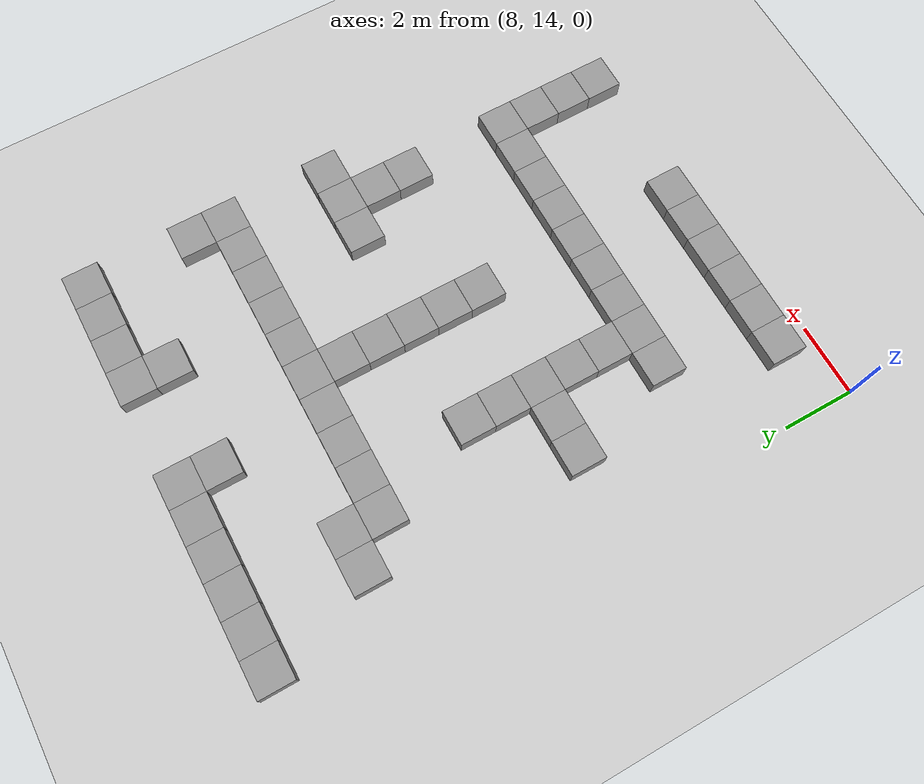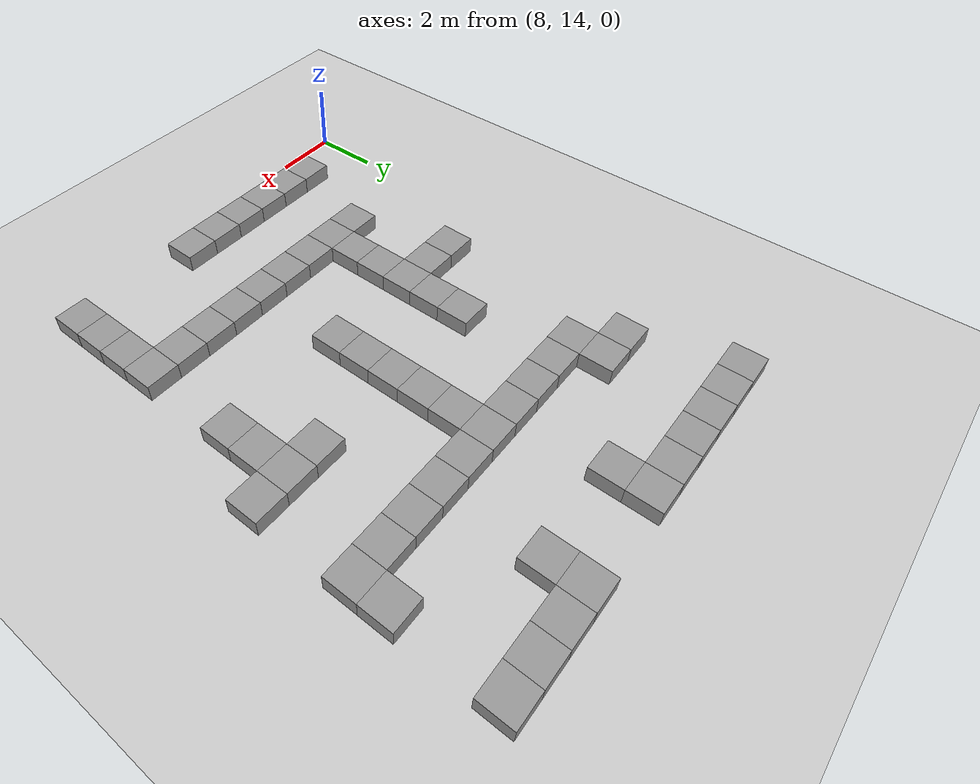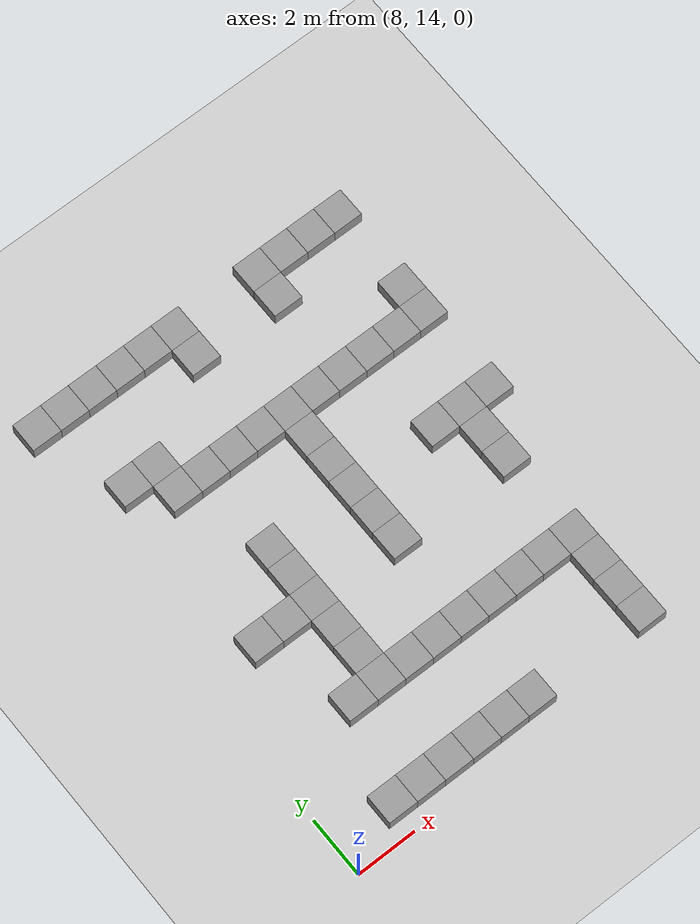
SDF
<sdf version="1.4">
 <world name="default">
  <model name="ground_plane">
   <static>1</static>
   <link name="link">
    <collision name="collision">
     <geometry><plane><normal>0 0 1</normal><size>100 100</size></plane></geometry>
     <surface><friction><ode><mu>100</mu><mu2>50</mu2></ode></friction></surface>
    </collision>
    <visual name="visual">
     <cast_shadows>0</cast_shadows>
     <geometry><plane><normal>0 0 1</normal><size>100 100</size></plane></geometry>
     <material>
      <script><uri>file://media/materials/scripts/gazebo.material</uri><name>Gazebo/Grey</name></script>
     </material>
    </visual>
    <velocity_decay><linear>0</linear><angular>0</angular></velocity_decay>
   </link>
  </model>
  <model name="unit_box_68">
   <pose>9 30 0 0 -0 0</pose>
   <link name="link">
    <inertial>
     <mass>1</mass>
     <inertia><ixx>1</ixx><ixy>0</ixy><ixz>0</ixz><iyy>1</iyy><iyz>0</iyz><izz>1</izz></inertia>
    </inertial>
    <collision name="collision"><geometry><box><size>1 1 1</size></box></geometry></collision>
    <visual name="visual">
     <geometry><box><size>1 1 1</size></box></geometry>
     <material>
      <script><uri>file://media/materials/scripts/gazebo.material</uri><name>Gazebo/Grey</name></script>
     </material>
    </visual>
    <velocity_decay><linear>0</linear><angular>0</angular></velocity_decay>
   </link>
   <static>1</static>
  </model>
  <model name="unit_box_69">
   <pose>10 30 0 0 -0 0</pose>
   <link name="link">
    <inertial>
     <mass>1</mass>
     <inertia><ixx>1</ixx><ixy>0</ixy><ixz>0</ixz><iyy>1</iyy><iyz>0</iyz><izz>1</izz></inertia>
    </inertial>
    <collision name="collision"><geometry><box><size>1 1 1</size></box></geometry></collision>
    <visual name="visual">
     <geometry><box><size>1 1 1</size></box></geometry>
     <material>
      <script><uri>file://media/materials/scripts/gazebo.material</uri><name>Gazebo/Grey</name></script>
     </material>
    </visual>
    <velocity_decay><linear>0</linear><angular>0</angular></velocity_decay>
   </link>
   <static>1</static>
  </model>
  <model name="unit_box_70">
   <pose>11 30 0 0 -0 0</pose>
   <link name="link">
    <inertial>
     <mass>1</mass>
     <inertia><ixx>1</ixx><ixy>0</ixy><ixz>0</ixz><iyy>1</iyy><iyz>0</iyz><izz>1</izz></inertia>
    </inertial>
    <collision name="collision"><geometry><box><size>1 1 1</size></box></geometry></collision>
    <visual name="visual">
     <geometry><box><size>1 1 1</size></box></geometry>
     <material>
      <script><uri>file://media/materials/scripts/gazebo.material</uri><name>Gazebo/Grey</name></script>
     </material>
    </visual>
    <velocity_decay><linear>0</linear><angular>0</angular></velocity_decay>
   </link>
   <static>1</static>
  </model>
  <model name="unit_box_71">
   <pose>12 30 0 0 -0 0</pose>
   <link name="link">
    <inertial>
     <mass>1</mass>
     <inertia><ixx>1</ixx><ixy>0</ixy><ixz>0</ixz><iyy>1</iyy><iyz>0</iyz><izz>1</izz></inertia>
    </inertial>
    <collision name="collision"><geometry><box><size>1 1 1</size></box></geometry></collision>
    <visual name="visual">
     <geometry><box><size>1 1 1</size></box></geometry>
     <material>
      <script><uri>file://media/materials/scripts/gazebo.material</uri><name>Gazebo/Grey</name></script>
     </material>
    </visual>
    <velocity_decay><linear>0</linear><angular>0</angular></velocity_decay>
   </link>
   <static>1</static>
  </model>
  <model name="unit_box_72">
   <pose>13 30 0 0 -0 0</pose>
   <link name="link">
    <inertial>
     <mass>1</mass>
     <inertia><ixx>1</ixx><ixy>0</ixy><ixz>0</ixz><iyy>1</iyy><iyz>0</iyz><izz>1</izz></inertia>
    </inertial>
    <collision name="collision"><geometry><box><size>1 1 1</size></box></geometry></collision>
    <visual name="visual">
     <geometry><box><size>1 1 1</size></box></geometry>
     <material>
      <script><uri>file://media/materials/scripts/gazebo.material</uri><name>Gazebo/Grey</name></script>
     </material>
    </visual>
    <velocity_decay><linear>0</linear><angular>0</angular></velocity_decay>
   </link>
   <static>1</static>
  </model>
  <model name="unit_box_73">
   <pose>14 30 0 0 -0 0</pose>
   <link name="link">
    <inertial>
     <mass>1</mass>
     <inertia><ixx>1</ixx><ixy>0</ixy><ixz>0</ixz><iyy>1</iyy><iyz>0</iyz><izz>1</izz></inertia>
    </inertial>
    <collision name="collision"><geometry><box><size>1 1 1</size></box></geometry></collision>
    <visual name="visual">
     <geometry><box><size>1 1 1</size></box></geometry>
     <material>
      <script><uri>file://media/materials/scripts/gazebo.material</uri><name>Gazebo/Grey</name></script>
     </material>
    </visual>
    <velocity_decay><linear>0</linear><angular>0</angular></velocity_decay>
   </link>
   <static>1</static>
  </model>
  <model name="unit_box_74">
   <pose>17 30 0 0 -0 0</pose>
   <link name="link">
    <inertial>
     <mass>1</mass>
     <inertia><ixx>1</ixx><ixy>0</ixy><ixz>0</ixz><iyy>1</iyy><iyz>0</iyz><izz>1</izz></inertia>
    </inertial>
    <collision name="collision"><geometry><box><size>1 1 1</size></box></geometry></collision>
    <visual name="visual">
     <geometry><box><size>1 1 1</size></box></geometry>
     <material>
      <script><uri>file://media/materials/scripts/gazebo.material</uri><name>Gazebo/Grey</name></script>
     </material>
    </visual>
    <velocity_decay><linear>0</linear><angular>0</angular></velocity_decay>
   </link>
   <static>1</static>
  </model>
  <model name="unit_box_75">
   <pose>18 30 0 0 -0 0</pose>
   <link name="link">
    <inertial>
     <mass>1</mass>
     <inertia><ixx>1</ixx><ixy>0</ixy><ixz>0</ixz><iyy>1</iyy><iyz>0</iyz><izz>1</izz></inertia>
    </inertial>
    <collision name="collision"><geometry><box><size>1 1 1</size></box></geometry></collision>
    <visual name="visual">
     <geometry><box><size>1 1 1</size></box></geometry>
     <material>
      <script><uri>file://media/materials/scripts/gazebo.material</uri><name>Gazebo/Grey</name></script>
     </material>
    </visual>
    <velocity_decay><linear>0</linear><angular>0</angular></velocity_decay>
   </link>
   <static>1</static>
  </model>
  <model name="unit_box_76">
   <pose>19 30 0 0 -0 0</pose>
   <link name="link">
    <inertial>
     <mass>1</mass>
     <inertia><ixx>1</ixx><ixy>0</ixy><ixz>0</ixz><iyy>1</iyy><iyz>0</iyz><izz>1</izz></inertia>
    </inertial>
    <collision name="collision"><geometry><box><size>1 1 1</size></box></geometry></collision>
    <visual name="visual">
     <geometry><box><size>1 1 1</size></box></geometry>
     <material>
      <script><uri>file://media/materials/scripts/gazebo.material</uri><name>Gazebo/Grey</name></script>
     </material>
    </visual>
    <velocity_decay><linear>0</linear><angular>0</angular></velocity_decay>
   </link>
   <static>1</static>
  </model>
  <model name="unit_box_77">
   <pose>20 30 0 0 -0 0</pose>
   <link name="link">
    <inertial>
     <mass>1</mass>
     <inertia><ixx>1</ixx><ixy>0</ixy><ixz>0</ixz><iyy>1</iyy><iyz>0</iyz><izz>1</izz></inertia>
    </inertial>
    <collision name="collision"><geometry><box><size>1 1 1</size></box></geometry></collision>
    <visual name="visual">
     <geometry><box><size>1 1 1</size></box></geometry>
     <material>
      <script><uri>file://media/materials/scripts/gazebo.material</uri><name>Gazebo/Grey</name></script>
     </material>
    </visual>
    <velocity_decay><linear>0</linear><angular>0</angular></velocity_decay>
   </link>
   <static>1</static>
  </model>
  <model name="unit_box_226">
   <pose>14 29 0 0 -0 0</pose>
   <link name="link">
    <inertial>
     <mass>1</mass>
     <inertia><ixx>1</ixx><ixy>0</ixy><ixz>0</ixz><iyy>1</iyy><iyz>0</iyz><izz>1</izz></inertia>
    </inertial>
    <collision name="collision"><geometry><box><size>1 1 1</size></box></geometry></collision>
    <visual name="visual">
     <geometry><box><size>1 1 1</size></box></geometry>
     <material>
      <script><uri>file://media/materials/scripts/gazebo.material</uri><name>Gazebo/Grey</name></script>
     </material>
    </visual>
    <velocity_decay><linear>0</linear><angular>0</angular></velocity_decay>
   </link>
   <static>1</static>
  </model>
  <model name="unit_box_227">
   <pose>17 29 0 0 -0 0</pose>
   <link name="link">
    <inertial>
     <mass>1</mass>
     <inertia><ixx>1</ixx><ixy>0</ixy><ixz>0</ixz><iyy>1</iyy><iyz>0</iyz><izz>1</izz></inertia>
    </inertial>
    <collision name="collision"><geometry><box><size>1 1 1</size></box></geometry></collision>
    <visual name="visual">
     <geometry><box><size>1 1 1</size></box></geometry>
     <material>
      <script><uri>file://media/materials/scripts/gazebo.material</uri><name>Gazebo/Grey</name></script>
     </material>
    </visual>
    <velocity_decay><linear>0</linear><angular>0</angular></velocity_decay>
   </link>
   <static>1</static>
  </model>
  <model name="unit_box_228">
   <pose>14 26 0 0 -0 0</pose>
   <link name="link">
    <inertial>
     <mass>1</mass>
     <inertia><ixx>1</ixx><ixy>0</ixy><ixz>0</ixz><iyy>1</iyy><iyz>0</iyz><izz>1</izz></inertia>
    </inertial>
    <collision name="collision"><geometry><box><size>1 1 1</size></box></geometry></collision>
    <visual name="visual">
     <geometry><box><size>1 1 1</size></box></geometry>
     <material>
      <script><uri>file://media/materials/scripts/gazebo.material</uri><name>Gazebo/Grey</name></script>
     </material>
    </visual>
    <velocity_decay><linear>0</linear><angular>0</angular></velocity_decay>
   </link>
   <static>1</static>
  </model>
  <model name="unit_box_229">
   <pose>15 26 0 0 -0 0</pose>
   <link name="link">
    <inertial>
     <mass>1</mass>
     <inertia><ixx>1</ixx><ixy>0</ixy><ixz>0</ixz><iyy>1</iyy><iyz>0</iyz><izz>1</izz></inertia>
    </inertial>
    <collision name="collision"><geometry><box><size>1 1 1</size></box></geometry></collision>
    <visual name="visual">
     <geometry><box><size>1 1 1</size></box></geometry>
     <material>
      <script><uri>file://media/materials/scripts/gazebo.material</uri><name>Gazebo/Grey</name></script>
     </material>
    </visual>
    <velocity_decay><linear>0</linear><angular>0</angular></velocity_decay>
   </link>
   <static>1</static>
  </model>
  <model name="unit_box_230">
   <pose>16 26 0 0 -0 0</pose>
   <link name="link">
    <inertial>
     <mass>1</mass>
     <inertia><ixx>1</ixx><ixy>0</ixy><ixz>0</ixz><iyy>1</iyy><iyz>0</iyz><izz>1</izz></inertia>
    </inertial>
    <collision name="collision"><geometry><box><size>1 1 1</size></box></geometry></collision>
    <visual name="visual">
     <geometry><box><size>1 1 1</size></box></geometry>
     <material>
      <script><uri>file://media/materials/scripts/gazebo.material</uri><name>Gazebo/Grey</name></script>
     </material>
    </visual>
    <velocity_decay><linear>0</linear><angular>0</angular></velocity_decay>
   </link>
   <static>1</static>
  </model>
  <model name="unit_box_231">
   <pose>17 26 0 0 -0 0</pose>
   <link name="link">
    <inertial>
     <mass>1</mass>
     <inertia><ixx>1</ixx><ixy>0</ixy><ixz>0</ixz><iyy>1</iyy><iyz>0</iyz><izz>1</izz></inertia>
    </inertial>
    <collision name="collision"><geometry><box><size>1 1 1</size></box></geometry></collision>
    <visual name="visual">
     <geometry><box><size>1 1 1</size></box></geometry>
     <material>
      <script><uri>file://media/materials/scripts/gazebo.material</uri><name>Gazebo/Grey</name></script>
     </material>
    </visual>
    <velocity_decay><linear>0</linear><angular>0</angular></velocity_decay>
   </link>
   <static>1</static>
  </model>
  <model name="unit_box_232">
   <pose>18 26 0 0 -0 0</pose>
   <link name="link">
    <inertial>
     <mass>1</mass>
     <inertia><ixx>1</ixx><ixy>0</ixy><ixz>0</ixz><iyy>1</iyy><iyz>0</iyz><izz>1</izz></inertia>
    </inertial>
    <collision name="collision"><geometry><box><size>1 1 1</size></box></geometry></collision>
    <visual name="visual">
     <geometry><box><size>1 1 1</size></box></geometry>
     <material>
      <script><uri>file://media/materials/scripts/gazebo.material</uri><name>Gazebo/Grey</name></script>
     </material>
    </visual>
    <velocity_decay><linear>0</linear><angular>0</angular></velocity_decay>
   </link>
   <static>1</static>
  </model>
  <model name="unit_box_233">
   <pose>19 26 0 0 -0 0</pose>
   <link name="link">
    <inertial>
     <mass>1</mass>
     <inertia><ixx>1</ixx><ixy>0</ixy><ixz>0</ixz><iyy>1</iyy><iyz>0</iyz><izz>1</izz></inertia>
    </inertial>
    <collision name="collision"><geometry><box><size>1 1 1</size></box></geometry></collision>
    <visual name="visual">
     <geometry><box><size>1 1 1</size></box></geometry>
     <material>
      <script><uri>file://media/materials/scripts/gazebo.material</uri><name>Gazebo/Grey</name></script>
     </material>
    </visual>
    <velocity_decay><linear>0</linear><angular>0</angular></velocity_decay>
   </link>
   <static>1</static>
  </model>
  <model name="unit_box_234">
   <pose>20 26 0 0 -0 0</pose>
   <link name="link">
    <inertial>
     <mass>1</mass>
     <inertia><ixx>1</ixx><ixy>0</ixy><ixz>0</ixz><iyy>1</iyy><iyz>0</iyz><izz>1</izz></inertia>
    </inertial>
    <collision name="collision"><geometry><box><size>1 1 1</size></box></geometry></collision>
    <visual name="visual">
     <geometry><box><size>1 1 1</size></box></geometry>
     <material>
      <script><uri>file://media/materials/scripts/gazebo.material</uri><name>Gazebo/Grey</name></script>
     </material>
    </visual>
    <velocity_decay><linear>0</linear><angular>0</angular></velocity_decay>
   </link>
   <static>1</static>
  </model>
  <model name="unit_box_235">
   <pose>20 27 0 0 -0 0</pose>
   <link name="link">
    <inertial>
     <mass>1</mass>
     <inertia><ixx>1</ixx><ixy>0</ixy><ixz>0</ixz><iyy>1</iyy><iyz>0</iyz><izz>1</izz></inertia>
    </inertial>
    <collision name="collision"><geometry><box><size>1 1 1</size></box></geometry></collision>
    <visual name="visual">
     <geometry><box><size>1 1 1</size></box></geometry>
     <material>
      <script><uri>file://media/materials/scripts/gazebo.material</uri><name>Gazebo/Grey</name></script>
     </material>
    </visual>
    <velocity_decay><linear>0</linear><angular>0</angular></velocity_decay>
   </link>
   <static>1</static>
  </model>
  <model name="unit_box_236">
   <pose>13 26 0 0 -0 0</pose>
   <link name="link">
    <inertial>
     <mass>1</mass>
     <inertia><ixx>1</ixx><ixy>0</ixy><ixz>0</ixz><iyy>1</iyy><iyz>0</iyz><izz>1</izz></inertia>
    </inertial>
    <collision name="collision"><geometry><box><size>1 1 1</size></box></geometry></collision>
    <visual name="visual">
     <geometry><box><size>1 1 1</size></box></geometry>
     <material>
      <script><uri>file://media/materials/scripts/gazebo.material</uri><name>Gazebo/Grey</name></script>
     </material>
    </visual>
    <velocity_decay><linear>0</linear><angular>0</angular></velocity_decay>
   </link>
   <static>1</static>
  </model>
  <model name="unit_box_237">
   <pose>12 26 0 0 -0 0</pose>
   <link name="link">
    <inertial>
     <mass>1</mass>
     <inertia><ixx>1</ixx><ixy>0</ixy><ixz>0</ixz><iyy>1</iyy><iyz>0</iyz><izz>1</izz></inertia>
    </inertial>
    <collision name="collision"><geometry><box><size>1 1 1</size></box></geometry></collision>
    <visual name="visual">
     <geometry><box><size>1 1 1</size></box></geometry>
     <material>
      <script><uri>file://media/materials/scripts/gazebo.material</uri><name>Gazebo/Grey</name></script>
     </material>
    </visual>
    <velocity_decay><linear>0</linear><angular>0</angular></velocity_decay>
   </link>
   <static>1</static>
  </model>
  <model name="unit_box_238">
   <pose>11 26 0 0 -0 0</pose>
   <link name="link">
    <inertial>
     <mass>1</mass>
     <inertia><ixx>1</ixx><ixy>0</ixy><ixz>0</ixz><iyy>1</iyy><iyz>0</iyz><izz>1</izz></inertia>
    </inertial>
    <collision name="collision"><geometry><box><size>1 1 1</size></box></geometry></collision>
    <visual name="visual">
     <geometry><box><size>1 1 1</size></box></geometry>
     <material>
      <script><uri>file://media/materials/scripts/gazebo.material</uri><name>Gazebo/Grey</name></script>
     </material>
    </visual>
    <velocity_decay><linear>0</linear><angular>0</angular></velocity_decay>
   </link>
   <static>1</static>
  </model>
  <model name="unit_box_239">
   <pose>11 27 0 0 -0 0</pose>
   <link name="link">
    <inertial>
     <mass>1</mass>
     <inertia><ixx>1</ixx><ixy>0</ixy><ixz>0</ixz><iyy>1</iyy><iyz>0</iyz><izz>1</izz></inertia>
    </inertial>
    <collision name="collision"><geometry><box><size>1 1 1</size></box></geometry></collision>
    <visual name="visual">
     <geometry><box><size>1 1 1</size></box></geometry>
     <material>
      <script><uri>file://media/materials/scripts/gazebo.material</uri><name>Gazebo/Grey</name></script>
     </material>
    </visual>
    <velocity_decay><linear>0</linear><angular>0</angular></velocity_decay>
   </link>
   <static>1</static>
  </model>
  <model name="unit_box_249">
   <pose>10 15 0 0 -0 0</pose>
   <link name="link">
    <inertial>
     <mass>1</mass>
     <inertia><ixx>1</ixx><ixy>0</ixy><ixz>0</ixz><iyy>1</iyy><iyz>0</iyz><izz>1</izz></inertia>
    </inertial>
    <collision name="collision"><geometry><box><size>1 1 1</size></box></geometry></collision>
    <visual name="visual">
     <geometry><box><size>1 1 1</size></box></geometry>
     <material>
      <script><uri>file://media/materials/scripts/gazebo.material</uri><name>Gazebo/Grey</name></script>
     </material>
    </visual>
    <velocity_decay><linear>0</linear><angular>0</angular></velocity_decay>
   </link>
   <static>1</static>
  </model>
  <model name="unit_box_250">
   <pose>11 15 0 0 -0 0</pose>
   <link name="link">
    <inertial>
     <mass>1</mass>
     <inertia><ixx>1</ixx><ixy>0</ixy><ixz>0</ixz><iyy>1</iyy><iyz>0</iyz><izz>1</izz></inertia>
    </inertial>
    <collision name="collision"><geometry><box><size>1 1 1</size></box></geometry></collision>
    <visual name="visual">
     <geometry><box><size>1 1 1</size></box></geometry>
     <material>
      <script><uri>file://media/materials/scripts/gazebo.material</uri><name>Gazebo/Grey</name></script>
     </material>
    </visual>
    <velocity_decay><linear>0</linear><angular>0</angular></velocity_decay>
   </link>
   <static>1</static>
  </model>
  <model name="unit_box_251">
   <pose>12 15 0 0 -0 0</pose>
   <link name="link">
    <inertial>
     <mass>1</mass>
     <inertia><ixx>1</ixx><ixy>0</ixy><ixz>0</ixz><iyy>1</iyy><iyz>0</iyz><izz>1</izz></inertia>
    </inertial>
    <collision name="collision"><geometry><box><size>1 1 1</size></box></geometry></collision>
    <visual name="visual">
     <geometry><box><size>1 1 1</size></box></geometry>
     <material>
      <script><uri>file://media/materials/scripts/gazebo.material</uri><name>Gazebo/Grey</name></script>
     </material>
    </visual>
    <velocity_decay><linear>0</linear><angular>0</angular></velocity_decay>
   </link>
   <static>1</static>
  </model>
  <model name="unit_box_252">
   <pose>13 15 0 0 -0 0</pose>
   <link name="link">
    <inertial>
     <mass>1</mass>
     <inertia><ixx>1</ixx><ixy>0</ixy><ixz>0</ixz><iyy>1</iyy><iyz>0</iyz><izz>1</izz></inertia>
    </inertial>
    <collision name="collision"><geometry><box><size>1 1 1</size></box></geometry></collision>
    <visual name="visual">
     <geometry><box><size>1 1 1</size></box></geometry>
     <material>
      <script><uri>file://media/materials/scripts/gazebo.material</uri><name>Gazebo/Grey</name></script>
     </material>
    </visual>
    <velocity_decay><linear>0</linear><angular>0</angular></velocity_decay>
   </link>
   <static>1</static>
  </model>
  <model name="unit_box_253">
   <pose>14 15 0 0 -0 0</pose>
   <link name="link">
    <inertial>
     <mass>1</mass>
     <inertia><ixx>1</ixx><ixy>0</ixy><ixz>0</ixz><iyy>1</iyy><iyz>0</iyz><izz>1</izz></inertia>
    </inertial>
    <collision name="collision"><geometry><box><size>1 1 1</size></box></geometry></collision>
    <visual name="visual">
     <geometry><box><size>1 1 1</size></box></geometry>
     <material>
      <script><uri>file://media/materials/scripts/gazebo.material</uri><name>Gazebo/Grey</name></script>
     </material>
    </visual>
    <velocity_decay><linear>0</linear><angular>0</angular></velocity_decay>
   </link>
   <static>1</static>
  </model>
  <model name="unit_box_254">
   <pose>15 15 0 0 -0 0</pose>
   <link name="link">
    <inertial>
     <mass>1</mass>
     <inertia><ixx>1</ixx><ixy>0</ixy><ixz>0</ixz><iyy>1</iyy><iyz>0</iyz><izz>1</izz></inertia>
    </inertial>
    <collision name="collision"><geometry><box><size>1 1 1</size></box></geometry></collision>
    <visual name="visual">
     <geometry><box><size>1 1 1</size></box></geometry>
     <material>
      <script><uri>file://media/materials/scripts/gazebo.material</uri><name>Gazebo/Grey</name></script>
     </material>
    </visual>
    <velocity_decay><linear>0</linear><angular>0</angular></velocity_decay>
   </link>
   <static>1</static>
  </model>
  <model name="unit_box_260">
   <pose>19 15 0 0 -0 0</pose>
   <link name="link">
    <inertial>
     <mass>1</mass>
     <inertia><ixx>1</ixx><ixy>0</ixy><ixz>0</ixz><iyy>1</iyy><iyz>0</iyz><izz>1</izz></inertia>
    </inertial>
    <collision name="collision"><geometry><box><size>1 1 1</size></box></geometry></collision>
    <visual name="visual">
     <geometry><box><size>1 1 1</size></box></geometry>
     <material>
      <script><uri>file://media/materials/scripts/gazebo.material</uri><name>Gazebo/Grey</name></script>
     </material>
    </visual>
    <velocity_decay><linear>0</linear><angular>0</angular></velocity_decay>
   </link>
   <static>1</static>
  </model>
  <model name="unit_box_261">
   <pose>19 16 0 0 -0 0</pose>
   <link name="link">
    <inertial>
     <mass>1</mass>
     <inertia><ixx>1</ixx><ixy>0</ixy><ixz>0</ixz><iyy>1</iyy><iyz>0</iyz><izz>1</izz></inertia>
    </inertial>
    <collision name="collision"><geometry><box><size>1 1 1</size></box></geometry></collision>
    <visual name="visual">
     <geometry><box><size>1 1 1</size></box></geometry>
     <material>
      <script><uri>file://media/materials/scripts/gazebo.material</uri><name>Gazebo/Grey</name></script>
     </material>
    </visual>
    <velocity_decay><linear>0</linear><angular>0</angular></velocity_decay>
   </link>
   <static>1</static>
  </model>
  <model name="unit_box_262">
   <pose>19 17 0 0 -0 0</pose>
   <link name="link">
    <inertial>
     <mass>1</mass>
     <inertia><ixx>1</ixx><ixy>0</ixy><ixz>0</ixz><iyy>1</iyy><iyz>0</iyz><izz>1</izz></inertia>
    </inertial>
    <collision name="collision"><geometry><box><size>1 1 1</size></box></geometry></collision>
    <visual name="visual">
     <geometry><box><size>1 1 1</size></box></geometry>
     <material>
      <script><uri>file://media/materials/scripts/gazebo.material</uri><name>Gazebo/Grey</name></script>
     </material>
    </visual>
    <velocity_decay><linear>0</linear><angular>0</angular></velocity_decay>
   </link>
   <static>1</static>
  </model>
  <model name="unit_box_263">
   <pose>19 18 0 0 -0 0</pose>
   <link name="link">
    <inertial>
     <mass>1</mass>
     <inertia><ixx>1</ixx><ixy>0</ixy><ixz>0</ixz><iyy>1</iyy><iyz>0</iyz><izz>1</izz></inertia>
    </inertial>
    <collision name="collision"><geometry><box><size>1 1 1</size></box></geometry></collision>
    <visual name="visual">
     <geometry><box><size>1 1 1</size></box></geometry>
     <material>
      <script><uri>file://media/materials/scripts/gazebo.material</uri><name>Gazebo/Grey</name></script>
     </material>
    </visual>
    <velocity_decay><linear>0</linear><angular>0</angular></velocity_decay>
   </link>
   <static>1</static>
  </model>
  <model name="unit_box_264">
   <pose>18 18 0 0 -0 0</pose>
   <link name="link">
    <inertial>
     <mass>1</mass>
     <inertia><ixx>1</ixx><ixy>0</ixy><ixz>0</ixz><iyy>1</iyy><iyz>0</iyz><izz>1</izz></inertia>
    </inertial>
    <collision name="collision"><geometry><box><size>1 1 1</size></box></geometry></collision>
    <visual name="visual">
     <geometry><box><size>1 1 1</size></box></geometry>
     <material>
      <script><uri>file://media/materials/scripts/gazebo.material</uri><name>Gazebo/Grey</name></script>
     </material>
    </visual>
    <velocity_decay><linear>0</linear><angular>0</angular></velocity_decay>
   </link>
   <static>1</static>
  </model>
  <model name="unit_box_265">
   <pose>17 18 0 0 -0 0</pose>
   <link name="link">
    <inertial>
     <mass>1</mass>
     <inertia><ixx>1</ixx><ixy>0</ixy><ixz>0</ixz><iyy>1</iyy><iyz>0</iyz><izz>1</izz></inertia>
    </inertial>
    <collision name="collision"><geometry><box><size>1 1 1</size></box></geometry></collision>
    <visual name="visual">
     <geometry><box><size>1 1 1</size></box></geometry>
     <material>
      <script><uri>file://media/materials/scripts/gazebo.material</uri><name>Gazebo/Grey</name></script>
     </material>
    </visual>
    <velocity_decay><linear>0</linear><angular>0</angular></velocity_decay>
   </link>
   <static>1</static>
  </model>
  <model name="unit_box_266">
   <pose>16 18 0 0 -0 0</pose>
   <link name="link">
    <inertial>
     <mass>1</mass>
     <inertia><ixx>1</ixx><ixy>0</ixy><ixz>0</ixz><iyy>1</iyy><iyz>0</iyz><izz>1</izz></inertia>
    </inertial>
    <collision name="collision"><geometry><box><size>1 1 1</size></box></geometry></collision>
    <visual name="visual">
     <geometry><box><size>1 1 1</size></box></geometry>
     <material>
      <script><uri>file://media/materials/scripts/gazebo.material</uri><name>Gazebo/Grey</name></script>
     </material>
    </visual>
    <velocity_decay><linear>0</linear><angular>0</angular></velocity_decay>
   </link>
   <static>1</static>
  </model>
  <model name="unit_box_267">
   <pose>15 18 0 0 -0 0</pose>
   <link name="link">
    <inertial>
     <mass>1</mass>
     <inertia><ixx>1</ixx><ixy>0</ixy><ixz>0</ixz><iyy>1</iyy><iyz>0</iyz><izz>1</izz></inertia>
    </inertial>
    <collision name="collision"><geometry><box><size>1 1 1</size></box></geometry></collision>
    <visual name="visual">
     <geometry><box><size>1 1 1</size></box></geometry>
     <material>
      <script><uri>file://media/materials/scripts/gazebo.material</uri><name>Gazebo/Grey</name></script>
     </material>
    </visual>
    <velocity_decay><linear>0</linear><angular>0</angular></velocity_decay>
   </link>
   <static>1</static>
  </model>
  <model name="unit_box_268">
   <pose>14 18 0 0 -0 0</pose>
   <link name="link">
    <inertial>
     <mass>1</mass>
     <inertia><ixx>1</ixx><ixy>0</ixy><ixz>0</ixz><iyy>1</iyy><iyz>0</iyz><izz>1</izz></inertia>
    </inertial>
    <collision name="collision"><geometry><box><size>1 1 1</size></box></geometry></collision>
    <visual name="visual">
     <geometry><box><size>1 1 1</size></box></geometry>
     <material>
      <script><uri>file://media/materials/scripts/gazebo.material</uri><name>Gazebo/Grey</name></script>
     </material>
    </visual>
    <velocity_decay><linear>0</linear><angular>0</angular></velocity_decay>
   </link>
   <static>1</static>
  </model>
  <model name="unit_box_269">
   <pose>13 18 0 0 -0 0</pose>
   <link name="link">
    <inertial>
     <mass>1</mass>
     <inertia><ixx>1</ixx><ixy>0</ixy><ixz>0</ixz><iyy>1</iyy><iyz>0</iyz><izz>1</izz></inertia>
    </inertial>
    <collision name="collision"><geometry><box><size>1 1 1</size></box></geometry></collision>
    <visual name="visual">
     <geometry><box><size>1 1 1</size></box></geometry>
     <material>
      <script><uri>file://media/materials/scripts/gazebo.material</uri><name>Gazebo/Grey</name></script>
     </material>
    </visual>
    <velocity_decay><linear>0</linear><angular>0</angular></velocity_decay>
   </link>
   <static>1</static>
  </model>
  <model name="unit_box_270">
   <pose>12 18 0 0 -0 0</pose>
   <link name="link">
    <inertial>
     <mass>1</mass>
     <inertia><ixx>1</ixx><ixy>0</ixy><ixz>0</ixz><iyy>1</iyy><iyz>0</iyz><izz>1</izz></inertia>
    </inertial>
    <collision name="collision"><geometry><box><size>1 1 1</size></box></geometry></collision>
    <visual name="visual">
     <geometry><box><size>1 1 1</size></box></geometry>
     <material>
      <script><uri>file://media/materials/scripts/gazebo.material</uri><name>Gazebo/Grey</name></script>
     </material>
    </visual>
    <velocity_decay><linear>0</linear><angular>0</angular></velocity_decay>
   </link>
   <static>1</static>
  </model>
  <model name="unit_box_271">
   <pose>11 18 0 0 -0 0</pose>
   <link name="link">
    <inertial>
     <mass>1</mass>
     <inertia><ixx>1</ixx><ixy>0</ixy><ixz>0</ixz><iyy>1</iyy><iyz>0</iyz><izz>1</izz></inertia>
    </inertial>
    <collision name="collision"><geometry><box><size>1 1 1</size></box></geometry></collision>
    <visual name="visual">
     <geometry><box><size>1 1 1</size></box></geometry>
     <material>
      <script><uri>file://media/materials/scripts/gazebo.material</uri><name>Gazebo/Grey</name></script>
     </material>
    </visual>
    <velocity_decay><linear>0</linear><angular>0</angular></velocity_decay>
   </link>
   <static>1</static>
  </model>
  <model name="unit_box_299">
   <pose>10 27 0 0 -0 0</pose>
   <link name="link">
    <inertial>
     <mass>1</mass>
     <inertia><ixx>1</ixx><ixy>0</ixy><ixz>0</ixz><iyy>1</iyy><iyz>0</iyz><izz>1</izz></inertia>
    </inertial>
    <collision name="collision"><geometry><box><size>1 1 1</size></box></geometry></collision>
    <visual name="visual">
     <geometry><box><size>1 1 1</size></box></geometry>
     <material>
      <script><uri>file://media/materials/scripts/gazebo.material</uri><name>Gazebo/Grey</name></script>
     </material>
    </visual>
    <velocity_decay><linear>0</linear><angular>0</angular></velocity_decay>
   </link>
   <static>1</static>
  </model>
  <model name="unit_box_313">
   <pose>20 23 0 0 -0 0</pose>
   <link name="link">
    <inertial>
     <mass>1</mass>
     <inertia><ixx>1</ixx><ixy>0</ixy><ixz>0</ixz><iyy>1</iyy><iyz>0</iyz><izz>1</izz></inertia>
    </inertial>
    <collision name="collision"><geometry><box><size>1 1 1</size></box></geometry></collision>
    <visual name="visual">
     <geometry><box><size>1 1 1</size></box></geometry>
     <material>
      <script><uri>file://media/materials/scripts/gazebo.material</uri><name>Gazebo/Grey</name></script>
     </material>
    </visual>
    <velocity_decay><linear>0</linear><angular>0</angular></velocity_decay>
   </link>
   <static>1</static>
  </model>
  <model name="unit_box_314">
   <pose>19 23 0 0 -0 0</pose>
   <link name="link">
    <inertial>
     <mass>1</mass>
     <inertia><ixx>1</ixx><ixy>0</ixy><ixz>0</ixz><iyy>1</iyy><iyz>0</iyz><izz>1</izz></inertia>
    </inertial>
    <collision name="collision"><geometry><box><size>1 1 1</size></box></geometry></collision>
    <visual name="visual">
     <geometry><box><size>1 1 1</size></box></geometry>
     <material>
      <script><uri>file://media/materials/scripts/gazebo.material</uri><name>Gazebo/Grey</name></script>
     </material>
    </visual>
    <velocity_decay><linear>0</linear><angular>0</angular></velocity_decay>
   </link>
   <static>1</static>
  </model>
  <model name="unit_box_315">
   <pose>18 23 0 0 -0 0</pose>
   <link name="link">
    <inertial>
     <mass>1</mass>
     <inertia><ixx>1</ixx><ixy>0</ixy><ixz>0</ixz><iyy>1</iyy><iyz>0</iyz><izz>1</izz></inertia>
    </inertial>
    <collision name="collision"><geometry><box><size>1 1 1</size></box></geometry></collision>
    <visual name="visual">
     <geometry><box><size>1 1 1</size></box></geometry>
     <material>
      <script><uri>file://media/materials/scripts/gazebo.material</uri><name>Gazebo/Grey</name></script>
     </material>
    </visual>
    <velocity_decay><linear>0</linear><angular>0</angular></velocity_decay>
   </link>
   <static>1</static>
  </model>
  <model name="unit_box_347">
   <pose>15 25 0 0 -0 0</pose>
   <link name="link">
    <inertial>
     <mass>1</mass>
     <inertia><ixx>1</ixx><ixy>0</ixy><ixz>0</ixz><iyy>1</iyy><iyz>0</iyz><izz>1</izz></inertia>
    </inertial>
    <collision name="collision"><geometry><box><size>1 1 1</size></box></geometry></collision>
    <visual name="visual">
     <geometry><box><size>1 1 1</size></box></geometry>
     <material>
      <script><uri>file://media/materials/scripts/gazebo.material</uri><name>Gazebo/Grey</name></script>
     </material>
    </visual>
    <velocity_decay><linear>0</linear><angular>0</angular></velocity_decay>
   </link>
   <static>1</static>
  </model>
  <model name="unit_box_348">
   <pose>15 24 0 0 -0 0</pose>
   <link name="link">
    <inertial>
     <mass>1</mass>
     <inertia><ixx>1</ixx><ixy>0</ixy><ixz>0</ixz><iyy>1</iyy><iyz>0</iyz><izz>1</izz></inertia>
    </inertial>
    <collision name="collision"><geometry><box><size>1 1 1</size></box></geometry></collision>
    <visual name="visual">
     <geometry><box><size>1 1 1</size></box></geometry>
     <material>
      <script><uri>file://media/materials/scripts/gazebo.material</uri><name>Gazebo/Grey</name></script>
     </material>
    </visual>
    <velocity_decay><linear>0</linear><angular>0</angular></velocity_decay>
   </link>
   <static>1</static>
  </model>
  <model name="unit_box_349">
   <pose>15 23 0 0 -0 0</pose>
   <link name="link">
    <inertial>
     <mass>1</mass>
     <inertia><ixx>1</ixx><ixy>0</ixy><ixz>0</ixz><iyy>1</iyy><iyz>0</iyz><izz>1</izz></inertia>
    </inertial>
    <collision name="collision"><geometry><box><size>1 1 1</size></box></geometry></collision>
    <visual name="visual">
     <geometry><box><size>1 1 1</size></box></geometry>
     <material>
      <script><uri>file://media/materials/scripts/gazebo.material</uri><name>Gazebo/Grey</name></script>
     </material>
    </visual>
    <velocity_decay><linear>0</linear><angular>0</angular></velocity_decay>
   </link>
   <static>1</static>
  </model>
  <model name="unit_box_350">
   <pose>15 22 0 0 -0 0</pose>
   <link name="link">
    <inertial>
     <mass>1</mass>
     <inertia><ixx>1</ixx><ixy>0</ixy><ixz>0</ixz><iyy>1</iyy><iyz>0</iyz><izz>1</izz></inertia>
    </inertial>
    <collision name="collision"><geometry><box><size>1 1 1</size></box></geometry></collision>
    <visual name="visual">
     <geometry><box><size>1 1 1</size></box></geometry>
     <material>
      <script><uri>file://media/materials/scripts/gazebo.material</uri><name>Gazebo/Grey</name></script>
     </material>
    </visual>
    <velocity_decay><linear>0</linear><angular>0</angular></velocity_decay>
   </link>
   <static>1</static>
  </model>
  <model name="unit_box_351">
   <pose>15 21 0 0 -0 0</pose>
   <link name="link">
    <inertial>
     <mass>1</mass>
     <inertia><ixx>1</ixx><ixy>0</ixy><ixz>0</ixz><iyy>1</iyy><iyz>0</iyz><izz>1</izz></inertia>
    </inertial>
    <collision name="collision"><geometry><box><size>1 1 1</size></box></geometry></collision>
    <visual name="visual">
     <geometry><box><size>1 1 1</size></box></geometry>
     <material>
      <script><uri>file://media/materials/scripts/gazebo.material</uri><name>Gazebo/Grey</name></script>
     </material>
    </visual>
    <velocity_decay><linear>0</linear><angular>0</angular></velocity_decay>
   </link>
   <static>1</static>
  </model>
  <model name="unit_box_352">
   <pose>19 22 0 0 -0 0</pose>
   <link name="link">
    <inertial>
     <mass>1</mass>
     <inertia><ixx>1</ixx><ixy>0</ixy><ixz>0</ixz><iyy>1</iyy><iyz>0</iyz><izz>1</izz></inertia>
    </inertial>
    <collision name="collision"><geometry><box><size>1 1 1</size></box></geometry></collision>
    <visual name="visual">
     <geometry><box><size>1 1 1</size></box></geometry>
     <material>
      <script><uri>file://media/materials/scripts/gazebo.material</uri><name>Gazebo/Grey</name></script>
     </material>
    </visual>
    <velocity_decay><linear>0</linear><angular>0</angular></velocity_decay>
   </link>
   <static>1</static>
  </model>
  <model name="unit_box_353">
   <pose>19 21 0 0 -0 0</pose>
   <link name="link">
    <inertial>
     <mass>1</mass>
     <inertia><ixx>1</ixx><ixy>0</ixy><ixz>0</ixz><iyy>1</iyy><iyz>0</iyz><izz>1</izz></inertia>
    </inertial>
    <collision name="collision"><geometry><box><size>1 1 1</size></box></geometry></collision>
    <visual name="visual">
     <geometry><box><size>1 1 1</size></box></geometry>
     <material>
      <script><uri>file://media/materials/scripts/gazebo.material</uri><name>Gazebo/Grey</name></script>
     </material>
    </visual>
    <velocity_decay><linear>0</linear><angular>0</angular></velocity_decay>
   </link>
   <static>1</static>
  </model>
  <model name="unit_box_354">
   <pose>12 19 0 0 -0 0</pose>
   <link name="link">
    <inertial>
     <mass>1</mass>
     <inertia><ixx>1</ixx><ixy>0</ixy><ixz>0</ixz><iyy>1</iyy><iyz>0</iyz><izz>1</izz></inertia>
    </inertial>
    <collision name="collision"><geometry><box><size>1 1 1</size></box></geometry></collision>
    <visual name="visual">
     <geometry><box><size>1 1 1</size></box></geometry>
     <material>
      <script><uri>file://media/materials/scripts/gazebo.material</uri><name>Gazebo/Grey</name></script>
     </material>
    </visual>
    <velocity_decay><linear>0</linear><angular>0</angular></velocity_decay>
   </link>
   <static>1</static>
  </model>
  <model name="unit_box_355">
   <pose>12 20 0 0 -0 0</pose>
   <link name="link">
    <inertial>
     <mass>1</mass>
     <inertia><ixx>1</ixx><ixy>0</ixy><ixz>0</ixz><iyy>1</iyy><iyz>0</iyz><izz>1</izz></inertia>
    </inertial>
    <collision name="collision"><geometry><box><size>1 1 1</size></box></geometry></collision>
    <visual name="visual">
     <geometry><box><size>1 1 1</size></box></geometry>
     <material>
      <script><uri>file://media/materials/scripts/gazebo.material</uri><name>Gazebo/Grey</name></script>
     </material>
    </visual>
    <velocity_decay><linear>0</linear><angular>0</angular></velocity_decay>
   </link>
   <static>1</static>
  </model>
  <model name="unit_box_356">
   <pose>12 21 0 0 -0 0</pose>
   <link name="link">
    <inertial>
     <mass>1</mass>
     <inertia><ixx>1</ixx><ixy>0</ixy><ixz>0</ixz><iyy>1</iyy><iyz>0</iyz><izz>1</izz></inertia>
    </inertial>
    <collision name="collision"><geometry><box><size>1 1 1</size></box></geometry></collision>
    <visual name="visual">
     <geometry><box><size>1 1 1</size></box></geometry>
     <material>
      <script><uri>file://media/materials/scripts/gazebo.material</uri><name>Gazebo/Grey</name></script>
     </material>
    </visual>
    <velocity_decay><linear>0</linear><angular>0</angular></velocity_decay>
   </link>
   <static>1</static>
  </model>
  <model name="unit_box_357">
   <pose>12 22 0 0 -0 0</pose>
   <link name="link">
    <inertial>
     <mass>1</mass>
     <inertia><ixx>1</ixx><ixy>0</ixy><ixz>0</ixz><iyy>1</iyy><iyz>0</iyz><izz>1</izz></inertia>
    </inertial>
    <collision name="collision"><geometry><box><size>1 1 1</size></box></geometry></collision>
    <visual name="visual">
     <geometry><box><size>1 1 1</size></box></geometry>
     <material>
      <script><uri>file://media/materials/scripts/gazebo.material</uri><name>Gazebo/Grey</name></script>
     </material>
    </visual>
    <velocity_decay><linear>0</linear><angular>0</angular></velocity_decay>
   </link>
   <static>1</static>
  </model>
  <model name="unit_box_358">
   <pose>12 23 0 0 -0 0</pose>
   <link name="link">
    <inertial>
     <mass>1</mass>
     <inertia><ixx>1</ixx><ixy>0</ixy><ixz>0</ixz><iyy>1</iyy><iyz>0</iyz><izz>1</izz></inertia>
    </inertial>
    <collision name="collision"><geometry><box><size>1 1 1</size></box></geometry></collision>
    <visual name="visual">
     <geometry><box><size>1 1 1</size></box></geometry>
     <material>
      <script><uri>file://media/materials/scripts/gazebo.material</uri><name>Gazebo/Grey</name></script>
     </material>
    </visual>
    <velocity_decay><linear>0</linear><angular>0</angular></velocity_decay>
   </link>
   <static>1</static>
  </model>
  <model name="unit_box_359">
   <pose>11 21 0 0 -0 0</pose>
   <link name="link">
    <inertial>
     <mass>1</mass>
     <inertia><ixx>1</ixx><ixy>0</ixy><ixz>0</ixz><iyy>1</iyy><iyz>0</iyz><izz>1</izz></inertia>
    </inertial>
    <collision name="collision"><geometry><box><size>1 1 1</size></box></geometry></collision>
    <visual name="visual">
     <geometry><box><size>1 1 1</size></box></geometry>
     <material>
      <script><uri>file://media/materials/scripts/gazebo.material</uri><name>Gazebo/Grey</name></script>
     </material>
    </visual>
    <velocity_decay><linear>0</linear><angular>0</angular></velocity_decay>
   </link>
   <static>1</static>
  </model>
  <model name="unit_box_360">
   <pose>10 21 0 0 -0 0</pose>
   <link name="link">
    <inertial>
     <mass>1</mass>
     <inertia><ixx>1</ixx><ixy>0</ixy><ixz>0</ixz><iyy>1</iyy><iyz>0</iyz><izz>1</izz></inertia>
    </inertial>
    <collision name="collision"><geometry><box><size>1 1 1</size></box></geometry></collision>
    <visual name="visual">
     <geometry><box><size>1 1 1</size></box></geometry>
     <material>
      <script><uri>file://media/materials/scripts/gazebo.material</uri><name>Gazebo/Grey</name></script>
     </material>
    </visual>
    <velocity_decay><linear>0</linear><angular>0</angular></velocity_decay>
   </link>
   <static>1</static>
  </model>
 </world>
</sdf>
